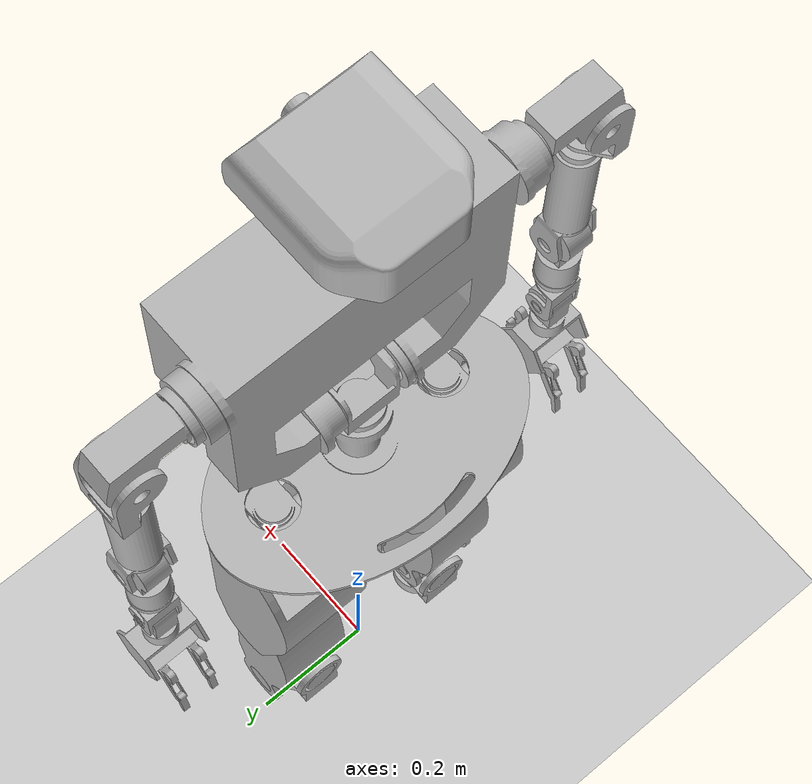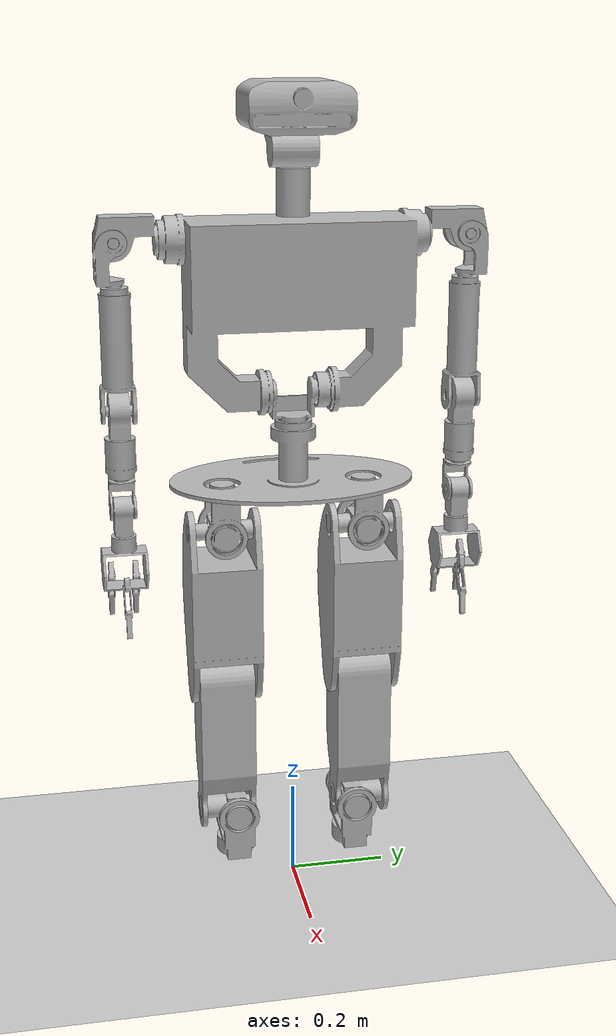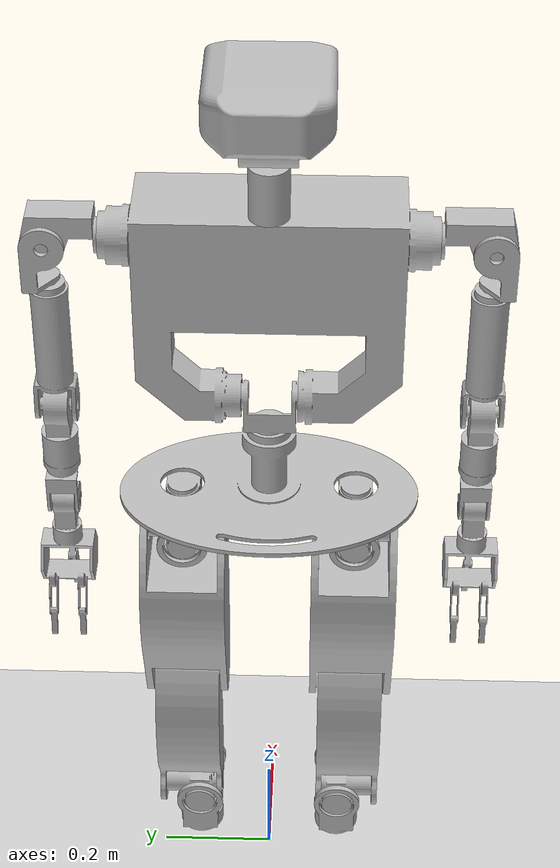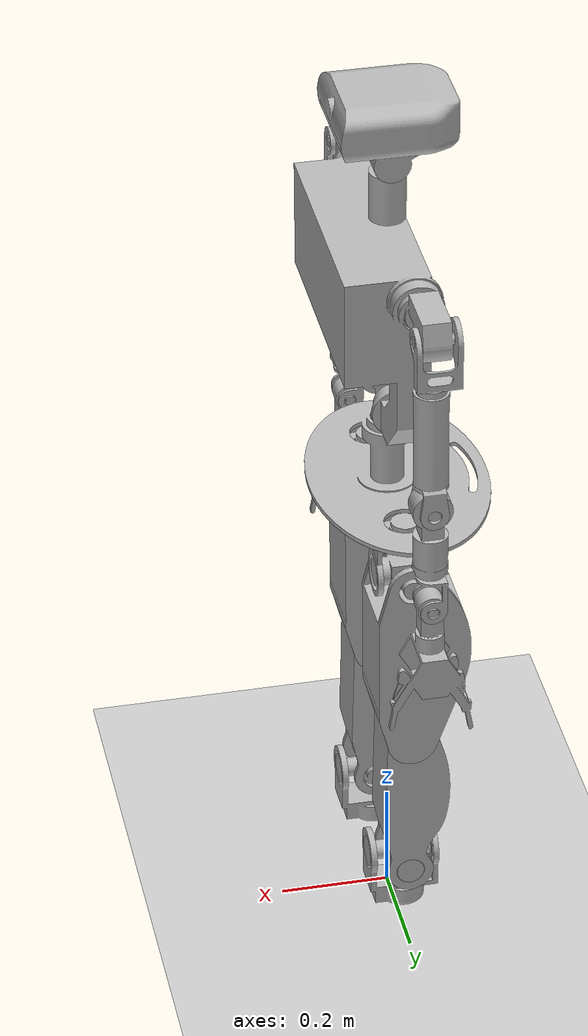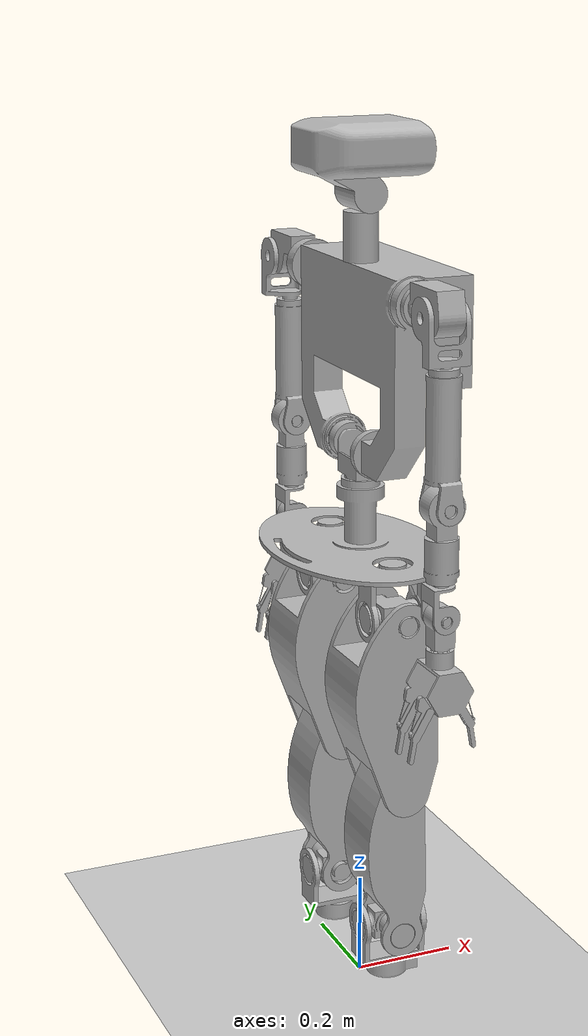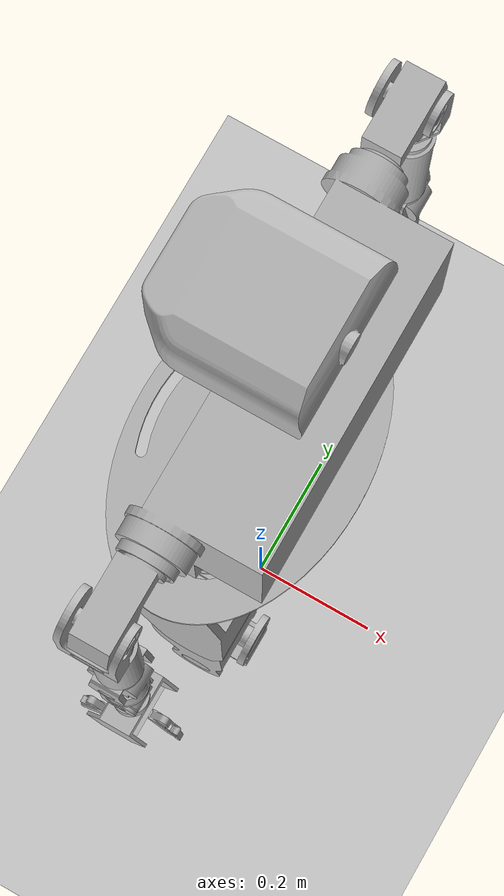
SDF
<?xml version="1.0"?>
<sdf version="1.6">
  <world name="default">

    <include>
      <uri>model://sun</uri>
    </include>

    <include>
      <uri>model://ground_plane</uri>
    </include>

    <include>
      <pose>0 0 0.05 0 -0 0</pose>
      <uri>model://teo/fixed</uri>
    </include>

  </world>
</sdf>

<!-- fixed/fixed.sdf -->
<sdf version='1.6'>
  <model name='teo_fixed'>

    <include>
      <uri>model://teo</uri>
    </include>

    <joint name="fixed_to_ground" type="fixed">
      <parent>world</parent>
      <child>teo::RootWaist_links</child>
    </joint>

  </model>
</sdf>

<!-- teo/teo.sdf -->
<sdf version='1.6'>
  <model name='teo'>

    <link name='RootWaist_links'>
      <pose>0 0 0 0 -0 0</pose>
      <inertial>
        <pose>-0.010985 -0.000323 0.033148 0 -0 0</pose>
        <mass>2.5</mass>
        <inertia>
          <ixx>0.038530767</ixx>
          <ixy>-0.000000135</ixy>
          <ixz>0.000238121</ixz>
          <iyy>0.017354343</iyy>
          <iyz>-4.8e-10</iyz>
          <izz>0.053231634</izz>
        </inertia>
      </inertial>
      <visual name='RootWaist_links_visual'>
        <geometry>
          <mesh>
            <uri>model://teo/meshes/visual/RootWaist_links.dae</uri>
          </mesh>
        </geometry>
      </visual>
    </link>

    <include>
      <pose>0 0 0.1932 0 -0 0</pose>
      <uri>model://teo/trunk</uri>
    </include>

    <include>
      <pose>0 0 0.6282 0 -0 0</pose>
      <uri>model://teo/head</uri>
    </include>

    <include>
      <pose>0 -0.26292 0.4982 0 -0 0</pose>
      <uri>model://teo/rightArm</uri>
    </include>

    <include>
      <pose>0 0.26292 0.4982 0 -0 0</pose>
      <uri>model://teo/leftArm</uri>
    </include>

    <include>
      <pose>0 -0.146 0 0 -0 0</pose>
      <uri>model://teo/rightLeg</uri>
    </include>

    <include>
      <pose>0 0.146 0 0 -0 0</pose>
      <uri>model://teo/leftLeg</uri>
    </include>

    <pose>0 0 0.845 0 -0 0</pose>

  </model>
</sdf>

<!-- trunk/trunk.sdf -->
<sdf version='1.6'>
  <model name='teo_trunk'>

    <link name='AxialWaist_link'>
      <pose>0 0 0 0 -0 0</pose>
      <inertial>
        <pose>-0.002235 -0.000979 -0.018814 0 -0 0</pose>
        <mass>1</mass>
        <inertia>
          <ixx>0.001977587</ixx>
          <ixy>0.00000206</ixy>
          <ixz>0.0000297</ixz>
          <iyy>0.000899729</iyy>
          <iyz>-0.00000307</iyz>
          <izz>0.001471749</izz>
        </inertia>
      </inertial>
      <visual name='AxialWaist_visual'>
        <geometry>
          <mesh>
            <uri>model://teo/meshes/visual/AxialWaist.dae</uri>
          </mesh>
        </geometry>
      </visual>
    </link>

    <joint name='AxialWaist' type='revolute'>
      <parent>teo::RootWaist_links</parent>
      <child>teo_trunk::AxialWaist_link</child>
      <axis>
        <xyz>0 0 1</xyz>
        <limit>
          <lower>-1.03</lower>
          <upper>0.81</upper>
        </limit>
      </axis>
    </joint>

    <link name='FrontalWaist_link'>
      <pose>0 0 0 0 -0 0</pose>
      <inertial>
        <pose>0.032985 -0.007876 0.220667 0 -0 0</pose>
        <mass>14.23545</mass>
        <inertia>
          <ixx>0.33566514</ixx>
          <ixy>0.000162127</ixy>
          <ixz>0.011858221</ixz>
          <iyy>0.126531585</iyy>
          <iyz>0.000914091</iyz>
          <izz>0.263359225</izz>
        </inertia>
      </inertial>
      <visual name='FrontalWaist_visual'>
        <geometry>
          <mesh>
            <uri>model://teo/meshes/visual/RootWaist.dae</uri>
          </mesh>
        </geometry>
      </visual>
    </link>

    <joint name='FrontalWaist' type='revolute'>
      <parent>teo_trunk::AxialWaist_link</parent>
      <child>teo_trunk::FrontalWaist_link</child>
      <axis>
        <xyz>0 1 0</xyz>
        <limit>
          <lower>-1.58</lower>
          <upper>0.18</upper>
        </limit>
      </axis>
    </joint>

    <plugin name='controlboard_trunk' filename='libgazebo_yarp_controlboard.so'>
      <yarpConfigurationFile>model://teo/conf/gazebo_teo_trunk.ini</yarpConfigurationFile>
    </plugin>

  </model>
</sdf>

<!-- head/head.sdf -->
<sdf version='1.6'>
  <model name='teo_head'>

    <link name='AxialNeck_link'>
      <pose>0 0 0 0 -0 0</pose>
      <inertial>
        <pose>0.000302 0.000193 -0.0452 0 -0 0</pose>
        <mass>1</mass>
        <inertia>
          <ixx>0.000939063</ixx>
          <ixy>0</ixy>
          <ixz>0</ixz>
          <iyy>0.000939063</iyy>
          <iyz>0</iyz>
          <izz>0.000528125</izz>
        </inertia>
      </inertial>
      <visual name='AxialNeck_visual'>
        <geometry>
          <mesh>
            <uri>model://teo/meshes/visual/AxialNeck.dae</uri>
          </mesh>
        </geometry>
      </visual>
    </link>

    <joint name='AxialNeck' type='revolute'>
      <parent>teo_trunk::FrontalWaist_link</parent>
      <child>teo_head::AxialNeck_link</child>
      <axis>
        <xyz>0 0 1</xyz>
        <limit>
          <lower>-1.22</lower>
          <upper>1.22</upper>
        </limit>
      </axis>
    </joint>

    <link name='FrontalNeck_link'>
      <pose>0 0 0.0325 0 -0 0</pose>
      <inertial>
        <pose>-0.002729 -0.000086 0.067027 0 -0 0</pose>
        <mass>2</mass>
        <inertia>
          <ixx>0.007599322</ixx>
          <ixy>5.83e-09</ixy>
          <ixz>0.0000658</ixz>
          <iyy>0.008325273</iyy>
          <iyz>-7.43e-09</iyz>
          <izz>0.011403464</izz>
        </inertia>
      </inertial>
      <visual name='FrontalNeck_visual'>
        <geometry>
          <mesh>
            <uri>model://teo/meshes/visual/FrontalNeck.dae</uri>
          </mesh>
        </geometry>
      </visual>
    </link>

    <joint name='FrontalNeck' type='revolute'>
      <parent>teo_head::AxialNeck_link</parent>
      <child>teo_head::FrontalNeck_link</child>
      <axis>
        <xyz>0 1 0</xyz>
        <limit>
          <lower>-0.51</lower>
          <upper>0.15</upper>
        </limit>
      </axis>
    </joint>

    <plugin name='controlboard_head' filename='libgazebo_yarp_controlboard.so'>
      <yarpConfigurationFile>model://teo/conf/gazebo_teo_head.ini</yarpConfigurationFile>
    </plugin>

  </model>
</sdf>

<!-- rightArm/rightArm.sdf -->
<sdf version='1.6'>
  <model name='teo_rightArm'>

    <link name='FrontalRightShoulder_link'>
      <pose>0 0 0 0 -0 0</pose>
      <inertial>
        <pose>-0.002267 -0.056164 0.008456 0 -0 0</pose>
        <mass>2</mass>
        <inertia>
          <ixx>0.004226791</ixx>
          <ixy>0.0000844</ixy>
          <ixz>-0.0000117</ixz>
          <iyy>0.002127281</iyy>
          <iyz>-0.000280493</iyz>
          <izz>0.004093161</izz>
        </inertia>
      </inertial>
      <visual name='FrontalRightShoulder_visual'>
        <geometry>
          <mesh>
            <uri>model://teo/meshes/visual/FrontalRightShoulder.dae</uri>
          </mesh>
        </geometry>
      </visual>
    </link>

    <joint name='FrontalRightShoulder' type='revolute'>
      <parent>teo_trunk::FrontalWaist_link</parent>
      <child>teo_rightArm::FrontalRightShoulder_link</child>
      <axis>
        <xyz>0 1 0</xyz>
        <limit>
          <lower>-1.71</lower>
          <upper>1.85</upper>
        </limit>
      </axis>
    </joint>

    <link name='SagittalRightShoulder_link'>
      <pose>0 -0.084 0 0 -0 0</pose>
      <inertial>
        <pose>-0.008472 -0.004826 -0.027321 0 -0 0</pose>
        <mass>1</mass>
        <inertia>
          <ixx>0.001610932</ixx>
          <ixy>-0.000069</ixy>
          <ixz>-0.000214886</ixz>
          <iyy>0.002187776</iyy>
          <iyz>-0.000069</iyz>
          <izz>0.001173533</izz>
        </inertia>
      </inertial>
      <visual name='SagittalRightShoulder_visual'>
        <geometry>
          <mesh>
            <uri>model://teo/meshes/visual/SagittalRightShoulder.dae</uri>
          </mesh>
        </geometry>
      </visual>
    </link>

    <joint name='SagittalRightShoulder' type='revolute'>
      <parent>teo_rightArm::FrontalRightShoulder_link</parent>
      <child>teo_rightArm::SagittalRightShoulder_link</child>
      <axis>
        <xyz>1 0 0</xyz>
        <limit>
          <lower>-1.32</lower>
          <upper>0.39</upper>
        </limit>
      </axis>
    </joint>

    <link name='AxialRightShoulder_link'>
      <pose>0 -0.084 -0.329 0 -0 0</pose>
      <visual name='AxialRightShoulder_visual'>
        <geometry>
          <mesh>
            <uri>model://teo/meshes/visual/AxialRightShoulder.dae</uri>
          </mesh>
        </geometry>
      </visual>
    </link>

    <joint name='AxialRightShoulder' type='revolute'>
      <parent>teo_rightArm::SagittalRightShoulder_link</parent>
      <child>teo_rightArm::AxialRightShoulder_link</child>
      <axis>
        <xyz>0 0 1</xyz>
        <limit>
          <lower>-1.4</lower>
          <upper>0.99</upper>
        </limit>
      </axis>
    </joint>

    <link name='FrontalRightElbow_link'>
      <pose>0 -0.084 -0.329 0 -0 0</pose>
      <inertial>
        <pose>0.000237 -0.00004 -0.04998 0 -0 0</pose>
        <mass>1</mass>
        <inertia>
          <ixx>0.002590029</ixx>
          <ixy>0</ixy>
          <ixz>0</ixz>
          <iyy>0.00262307</iyy>
          <iyz>0</iyz>
          <izz>0.000446024</izz>
        </inertia>
      </inertial>
      <visual name='FrontalRightElbow_visual'>
        <geometry>
          <mesh>
            <uri>model://teo/meshes/visual/FrontalRightElbow.dae</uri>
          </mesh>
        </geometry>
      </visual>
    </link>

    <joint name='FrontalRightElbow' type='revolute'>
      <parent>teo_rightArm::AxialRightShoulder_link</parent>
      <child>teo_rightArm::FrontalRightElbow_link</child>
      <axis>
        <xyz>0 1 0</xyz>
        <limit>
          <lower>-1.74</lower>
          <upper>1.72</upper>
        </limit>
      </axis>
    </joint>

    <link name='AxialRightWrist_link'>
      <pose>0 -0.084 -0.531 0 -0 0</pose>
      <inertial>
        <pose>-0.001151 0.000603 0.02464 0 -0 0</pose>
        <mass>0.63149</mass>
        <inertia>
          <ixx>0.000701463</ixx>
          <ixy>-0.0000105</ixy>
          <ixz>-0.0000109</ixz>
          <iyy>0.000612806</iyy>
          <iyz>0.0000115</iyz>
          <izz>0.000326949</izz>
        </inertia>
      </inertial>
      <visual name='AxialRightWrist_visual'>
        <geometry>
          <mesh>
            <uri>model://teo/meshes/visual/AxialRightWrist.dae</uri>
          </mesh>
        </geometry>
      </visual>
    </link>

    <joint name='AxialRightWrist' type='revolute'>
      <parent>teo_rightArm::FrontalRightElbow_link</parent>
      <child>teo_rightArm::AxialRightWrist_link</child>
      <axis>
        <xyz>0 0 1</xyz>
        <limit>
          <lower>-1.4</lower>
          <upper>1.74</upper>
        </limit>
      </axis>
    </joint>

    <link name='FrontalRightWrist_link'>
      <pose>0 -0.084 -0.531 0 -0 0</pose>
      <inertial>
        <pose>-0.002314 0.00007 -0.108635 0 -0 0</pose>
        <mass>1.17</mass>
        <inertia>
          <ixx>0.005329957</ixx>
          <ixy>0.000000102</ixy>
          <ixz>0.000114751</ixz>
          <iyy>0.005345282</iyy>
          <iyz>-0.00000807</iyz>
          <izz>0.000883179</izz>
        </inertia>
      </inertial>
      <visual name='FrontalRightWrist_visual'>
        <geometry>
          <mesh>
            <uri>model://teo/meshes/visual/FrontalRightWrist.dae</uri>
          </mesh>
        </geometry>
      </visual>
    </link>

    <joint name='FrontalRightWrist' type='revolute'>
      <parent>teo_rightArm::AxialRightWrist_link</parent>
      <child>teo_rightArm::FrontalRightWrist_link</child>
      <axis>
        <xyz>0 1 0</xyz>
        <limit>
          <lower>-2.01</lower>
          <upper>0.78</upper>
        </limit>
      </axis>
    </joint>

    <plugin name='controlboard_rightArm' filename='libgazebo_yarp_controlboard.so'>
      <yarpConfigurationFile>model://teo/conf/gazebo_teo_rightArm.ini</yarpConfigurationFile>
    </plugin>

  </model>
</sdf>

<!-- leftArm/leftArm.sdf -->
<sdf version='1.6'>
  <model name='teo_leftArm'>

    <link name='FrontalLeftShoulder_link'>
      <pose>0 0 0 0 -0 0</pose>
      <inertial>
        <pose>-0.002272 0.056186 0.008165 0 -0 0</pose>
        <mass>2</mass>
        <inertia>
          <ixx>0.004226791</ixx>
          <ixy>-0.0000855</ixy>
          <ixz>-0.0000117</ixz>
          <iyy>0.00212734</iyy>
          <iyz>0.000280493</iyz>
          <izz>0.00409322</izz>
        </inertia>
      </inertial>
      <visual name='FrontalLeftShoulder_visual'>
        <geometry>
          <mesh>
            <uri>model://teo/meshes/visual/FrontalLeftShoulder.dae</uri>
          </mesh>
        </geometry>
      </visual>
    </link>

    <joint name='FrontalLeftShoulder' type='revolute'>
      <parent>teo_trunk::FrontalWaist_link</parent>
      <child>teo_leftArm::FrontalLeftShoulder_link</child>
      <axis>
        <xyz>0 1 0</xyz>
        <limit>
          <lower>-1.69</lower>
          <upper>1.98</upper>
        </limit>
      </axis>
    </joint>

    <link name='SagittalLeftShoulder_link'>
      <pose>0 0.084 0 0 -0 0</pose>
      <inertial>
        <pose>-0.008047 0.004937 -0.027619 0 -0 0</pose>
        <mass>1</mass>
        <inertia>
          <ixx>0.001610921</ixx>
          <ixy>0.000069</ixy>
          <ixz>-0.000214885</ixz>
          <iyy>0.002187768</iyy>
          <iyz>-0.000163004</iyz>
          <izz>0.001173531</izz>
        </inertia>
      </inertial>
      <visual name='SagittalLeftShoulder_visual'>
        <geometry>
          <mesh>
            <uri>model://teo/meshes/visual/SagittalLeftShoulder.dae</uri>
          </mesh>
        </geometry>
      </visual>
    </link>

    <joint name='SagittalLeftShoulder' type='revolute'>
      <parent>teo_leftArm::FrontalLeftShoulder_link</parent>
      <child>teo_leftArm::SagittalLeftShoulder_link</child>
      <axis>
        <xyz>1 0 0</xyz>
        <limit>
          <lower>-0.42</lower>
          <upper>1.34</upper>
        </limit>
      </axis>
    </joint>

    <link name='AxialLeftShoulder_link'>
      <pose>0 0.084 -0.329 0 -0 0</pose>
      <inertial>
        <pose>-0.000172 0.000249 0.100649 0 -0 0</pose>
        <mass>1</mass>
        <inertia>
          <ixx>0.006925108</ixx>
          <ixy>0</ixy>
          <ixz>0</ixz>
          <iyy>0.006741634</iyy>
          <iyz>0.0000397</iyz>
          <izz>0.000611796</izz>
        </inertia>
      </inertial>
      <visual name='AxialLeftShoulder_visual'>
        <geometry>
          <mesh>
            <uri>model://teo/meshes/visual/AxialLeftShoulder.dae</uri>
          </mesh>
        </geometry>
      </visual>
    </link>

    <joint name='AxialLeftShoulder' type='revolute'>
      <parent>teo_leftArm::SagittalLeftShoulder_link</parent>
      <child>teo_leftArm::AxialLeftShoulder_link</child>
      <axis>
        <xyz>0 0 1</xyz>
        <limit>
          <lower>-0.9</lower>
          <upper>1.47</upper>
        </limit>
      </axis>
    </joint>

    <link name='FrontalLeftElbow_link'>
      <pose>0 0.084 -0.329 0 -0 0</pose>
      <inertial>
        <pose>0.000287 -0.000116 -0.053185 0 -0 0</pose>
        <mass>1</mass>
        <inertia>
          <ixx>0.002590029</ixx>
          <ixy>0</ixy>
          <ixz>0</ixz>
          <iyy>0.00262307</iyy>
          <iyz>0</iyz>
          <izz>0.000446024</izz>
        </inertia>
      </inertial>
      <visual name='FrontalLeftElbow_visual'>
        <geometry>
          <mesh>
            <uri>model://teo/meshes/visual/FrontalLeftElbow.dae</uri>
          </mesh>
        </geometry>
      </visual>
    </link>

    <joint name='FrontalLeftElbow' type='revolute'>
      <parent>teo_leftArm::AxialLeftShoulder_link</parent>
      <child>teo_leftArm::FrontalLeftElbow_link</child>
      <axis>
        <xyz>0 1 0</xyz>
        <limit>
          <lower>-1.76</lower>
          <upper>1.69</upper>
        </limit>
      </axis>
    </joint>

    <link name='AxialLeftWrist_link'>
      <pose>0 0.084 -0.531 0 -0 0</pose>
      <inertial>
        <pose>-0.001151 0.000603 0.02464 0 -0 0</pose>
        <mass>0.63149</mass>
        <inertia>
          <ixx>0.000701463</ixx>
          <ixy>-0.0000105</ixy>
          <ixz>-0.0000109</ixz>
          <iyy>0.000612806</iyy>
          <iyz>0.0000115</iyz>
          <izz>0.000326949</izz>
        </inertia>
      </inertial>
      <visual name='AxialLeftWrist_visual'>
        <geometry>
          <mesh>
            <uri>model://teo/meshes/visual/AxialLeftWrist.dae</uri>
          </mesh>
        </geometry>
      </visual>
    </link>

    <joint name='AxialLeftWrist' type='revolute'>
      <parent>teo_leftArm::FrontalLeftElbow_link</parent>
      <child>teo_leftArm::AxialLeftWrist_link</child>
      <axis>
        <xyz>0 0 1</xyz>
        <limit>
          <lower>-1.77</lower>
          <upper>1.33</upper>
        </limit>
      </axis>
    </joint>

    <link name='FrontalLeftWrist_link'>
      <pose>0 0.084 -0.531 0 -0 0</pose>
      <inertial>
        <pose>-0.002314 0.00007 -0.108635 0 -0 0</pose>
        <mass>1.17</mass>
        <inertia>
          <ixx>0.005330647</ixx>
          <ixy>0.000000128</ixy>
          <ixz>0.000100487</ixz>
          <iyy>0.005345282</iyy>
          <iyz>-0.00000807</iyz>
          <izz>0.000882489</izz>
        </inertia>
      </inertial>
      <visual name='FrontalLeftWrist_visual'>
        <geometry>
          <mesh>
            <uri>model://teo/meshes/visual/FrontalLeftWrist.dae</uri>
          </mesh>
        </geometry>
      </visual>
    </link>

    <joint name='FrontalLeftWrist' type='revolute'>
      <parent>teo_leftArm::AxialLeftWrist_link</parent>
      <child>teo_leftArm::FrontalLeftWrist_link</child>
      <axis>
        <xyz>0 1 0</xyz>
        <limit>
          <lower>-1.98</lower>
          <upper>1.07</upper>
        </limit>
      </axis>
    </joint>

    <plugin name='controlboard_leftArm' filename='libgazebo_yarp_controlboard.so'>
      <yarpConfigurationFile>model://teo/conf/gazebo_teo_leftArm.ini</yarpConfigurationFile>
    </plugin>

  </model>
</sdf>

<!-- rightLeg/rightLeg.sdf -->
<sdf version='1.6'>
  <model name='teo_rightLeg'>

    <link name='AxialRightHip_link'>
      <pose>0 0 0 0 -0 0</pose>
      <inertial>
        <pose>0.000089 -0.000389 -0.065985 0 -0 0</pose>
        <mass>0.84945</mass>
        <inertia>
          <ixx>0.001564202</ixx>
          <ixy>0</ixy>
          <ixz>0.0000025</ixz>
          <iyy>0.002645089</iyy>
          <iyz>0</iyz>
          <izz>0.001706349</izz>
        </inertia>
      </inertial>
      <visual name='AxialRightHip_visual'>
        <geometry>
          <mesh>
            <uri>model://teo/meshes/visual/AxialRightHip.dae</uri>
          </mesh>
        </geometry>
      </visual>
    </link>

    <joint name='AxialRightHip' type='revolute'>
      <parent>teo::RootWaist_links</parent>
      <child>teo_rightLeg::AxialRightHip_link</child>
      <axis>
        <xyz>0 0 1</xyz>
        <limit>
          <lower>-0.57</lower>
          <upper>0.49</upper>
        </limit>
      </axis>
    </joint>

    <link name='SagittalRightHip_link'>
      <pose>0 0 -0.092 0 -0 0</pose>
      <inertial>
        <pose>-0.000636 0.001058 0.000349 0 -0 0</pose>
        <mass>1.45459</mass>
        <inertia>
          <ixx>0.001545815</ixx>
          <ixy>-0.00000297</ixy>
          <ixz>-4.07e-09</ixz>
          <iyy>0.00119159</iyy>
          <iyz>9.16e-09</iyz>
          <izz>0.002270482</izz>
        </inertia>
      </inertial>
      <visual name='SagittalRightHip_visual'>
        <geometry>
          <mesh>
            <uri>model://teo/meshes/visual/SagittalRightHip.dae</uri>
          </mesh>
        </geometry>
      </visual>
    </link>

    <joint name='SagittalRightHip' type='revolute'>
      <parent>teo_rightLeg::AxialRightHip_link</parent>
      <child>teo_rightLeg::SagittalRightHip_link</child>
      <axis>
        <xyz>1 0 0</xyz>
        <limit>
          <lower>-0.25</lower>
          <upper>0.22</upper>
        </limit>
      </axis>
    </joint>

    <link name='FrontalRightHip_link'>
      <pose>0 0 -0.092 0 -0 0</pose>
      <inertial>
        <pose>-0.010862 -0.000006 -0.161205 0 -0 0</pose>
        <mass>1.89152</mass>
        <inertia>
          <ixx>0.015077735</ixx>
          <ixy>0</ixy>
          <ixz>-0.000442074</ixz>
          <iyy>0.015112044</iyy>
          <iyz>0</iyz>
          <izz>0.00747346</izz>
        </inertia>
      </inertial>
      <visual name='FrontalRightHip_visual'>
        <geometry>
          <mesh>
            <uri>model://teo/meshes/visual/FrontalRightHip.dae</uri>
          </mesh>
        </geometry>
      </visual>
    </link>

    <joint name='FrontalRightHip' type='revolute'>
      <parent>teo_rightLeg::SagittalRightHip_link</parent>
      <child>teo_rightLeg::FrontalRightHip_link</child>
      <axis>
        <xyz>0 1 0</xyz>
        <limit>
          <lower>-0.55</lower>
          <upper>0.74</upper>
        </limit>
      </axis>
    </joint>

    <link name='FrontalRightKnee_link'>
      <pose>0 0 -0.422 0 -0 0</pose>
      <inertial>
        <pose>-0.006614 -0.000411 -0.146413 0 -0 0</pose>
        <mass>1.94824</mass>
        <inertia>
          <ixx>0.02186171</ixx>
          <ixy>0</ixy>
          <ixz>0.00000316</ixz>
          <iyy>0.021411109</iyy>
          <iyz>0</iyz>
          <izz>0.003843636</izz>
        </inertia>
      </inertial>
      <visual name='FrontalRightKnee_visual'>
        <geometry>
          <mesh>
            <uri>model://teo/meshes/visual/FrontalRightKnee.dae</uri>
          </mesh>
        </geometry>
      </visual>
    </link>

    <joint name='FrontalRightKnee' type='revolute'>
      <parent>teo_rightLeg::FrontalRightHip_link</parent>
      <child>teo_rightLeg::FrontalRightKnee_link</child>
      <axis>
        <xyz>0 1 0</xyz>
        <limit>
          <lower>-1.07</lower>
          <upper>1.44</upper>
        </limit>
      </axis>
    </joint>

    <link name='FrontalRightAnkle_link'>
      <pose>0 0.0175 -0.722 0 -0 0</pose>
      <inertial>
        <pose>0.002577 -0.013536 0.000182 0 -0 0</pose>
        <mass>1.50359</mass>
        <inertia>
          <ixx>0.001395488</ixx>
          <ixy>0.00000685</ixy>
          <ixz>1e-11</ixz>
          <iyy>0.001589358</iyy>
          <iyz>0</iyz>
          <izz>0.002418657</izz>
        </inertia>
      </inertial>
      <visual name='FrontalRightAnkle_visual'>
        <geometry>
          <mesh>
            <uri>model://teo/meshes/visual/FrontalRightAnkle.dae</uri>
          </mesh>
        </geometry>
      </visual>
    </link>

    <joint name='FrontalRightAnkle' type='revolute'>
      <parent>teo_rightLeg::FrontalRightKnee_link</parent>
      <child>teo_rightLeg::FrontalRightAnkle_link</child>
      <axis>
        <xyz>0 1 0</xyz>
        <limit>
          <lower>-0.4</lower>
          <upper>0.44</upper>
        </limit>
      </axis>
    </joint>

    <link name='SagittalRightAnkle_link'>
      <pose>0 0.0175 -0.722 0 -0 0</pose>
      <inertial>
        <pose>0.01003 0.000936 -0.0669 0 -0 0</pose>
        <mass>3.1334</mass>
        <inertia>
          <ixx>0.00774203</ixx>
          <ixy>0.000455866</ixy>
          <ixz>-0.001851657</ixz>
          <iyy>0.014781323</iyy>
          <iyz>-0.000147513</iyz>
          <izz>0.013361748</izz>
        </inertia>
      </inertial>
      <visual name='FrontalRightAnkle_visual'>
        <geometry>
          <mesh>
            <uri>model://teo/meshes/visual/SagittalRightAnkle.dae</uri>
          </mesh>
        </geometry>
      </visual>
    </link>

    <joint name='SagittalRightAnkle' type='revolute'>
      <parent>teo_rightLeg::FrontalRightAnkle_link</parent>
      <child>teo_rightLeg::SagittalRightAnkle_link</child>
      <axis>
        <xyz>1 0 0</xyz>
        <limit>
          <lower>-0.35</lower>
          <upper>0.74</upper>
        </limit>
      </axis>
    </joint>

    <plugin name='controlboard_rightLeg' filename='libgazebo_yarp_controlboard.so'>
      <yarpConfigurationFile>model://teo/conf/gazebo_teo_rightLeg.ini</yarpConfigurationFile>
    </plugin>

  </model>
</sdf>

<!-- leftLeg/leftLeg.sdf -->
<sdf version='1.6'>
  <model name='teo_leftLeg'>

    <link name='AxialLeftHip_link'>
      <pose>0 0 0 0 -0 0</pose>
      <inertial>
        <pose>0.000089 -0.000389 -0.065985 0 -0 0</pose>
        <mass>0.84945</mass>
        <inertia>
          <ixx>0.001564202</ixx>
          <ixy>0.0000025</ixy>
          <ixz>0</ixz>
          <iyy>0.002645089</iyy>
          <iyz>0</iyz>
          <izz>0.001706349</izz>
        </inertia>
      </inertial>
      <visual name='AxialLeftHip_visual'>
        <geometry>
          <mesh>
            <uri>model://teo/meshes/visual/AxialLeftHip.dae</uri>
          </mesh>
        </geometry>
      </visual>
    </link>

    <joint name='AxialLeftHip' type='revolute'>
      <parent>teo::RootWaist_links</parent>
      <child>teo_leftLeg::AxialLeftHip_link</child>
      <axis>
        <xyz>0 0 1</xyz>
        <limit>
          <lower>-0.49</lower>
          <upper>0.57</upper>
        </limit>
      </axis>
    </joint>

    <link name='SagittalLeftHip_link'>
      <pose>0 0 -0.092 0 -0 0</pose>
      <inertial>
        <pose>-0.00011 -0.000988 0.000214 0 -0 0</pose>
        <mass>1.45459</mass>
        <inertia>
          <ixx>0.001545815</ixx>
          <ixy>-0.00000297</ixy>
          <ixz>-4.07e-09</ixz>
          <iyy>0.00119159</iyy>
          <iyz>9.16e-09</iyz>
          <izz>0.002270482</izz>
        </inertia>
      </inertial>
      <visual name='SagittalLeftHip_visual'>
        <geometry>
          <mesh>
            <uri>model://teo/meshes/visual/SagittalLeftHip.dae</uri>
          </mesh>
        </geometry>
      </visual>
    </link>

    <joint name='SagittalLeftHip' type='revolute'>
      <parent>teo_leftLeg::AxialLeftHip_link</parent>
      <child>teo_leftLeg::SagittalLeftHip_link</child>
      <axis>
        <xyz>1 0 0</xyz>
        <limit>
          <lower>-0.22</lower>
          <upper>0.25</upper>
        </limit>
      </axis>
    </joint>

    <link name='FrontalLeftHip_link'>
      <pose>0 0 -0.092 0 -0 0</pose>
      <inertial>
        <pose>-0.010862 -0.000006 -0.161205 0 -0 0</pose>
        <mass>1.89152</mass>
        <inertia>
          <ixx>0.015077735</ixx>
          <ixy>0</ixy>
          <ixz>-0.000442074</ixz>
          <iyy>0.015112044</iyy>
          <iyz>0</iyz>
          <izz>0.00747346</izz>
        </inertia>
      </inertial>
      <visual name='FrontalLeftHip_visual'>
        <geometry>
          <mesh>
            <uri>model://teo/meshes/visual/FrontalLeftHip.dae</uri>
          </mesh>
        </geometry>
      </visual>
    </link>

    <joint name='FrontalLeftHip' type='revolute'>
      <parent>teo_leftLeg::SagittalLeftHip_link</parent>
      <child>teo_leftLeg::FrontalLeftHip_link</child>
      <axis>
        <xyz>0 1 0</xyz>
        <limit>
          <lower>-0.55</lower>
          <upper>0.74</upper>
        </limit>
      </axis>
    </joint>

    <link name='FrontalLeftKnee_link'>
      <pose>0 0 -0.422 0 -0 0</pose>
      <inertial>
        <pose>-0.006614 -0.000411 -0.146413 0 -0 0</pose>
        <mass>1.94824</mass>
        <inertia>
          <ixx>0.02186171</ixx>
          <ixy>0</ixy>
          <ixz>0.00000316</ixz>
          <iyy>0.021411109</iyy>
          <iyz>0</iyz>
          <izz>0.003843636</izz>
        </inertia>
      </inertial>
      <visual name='FrontalLeftKnee_visual'>
        <geometry>
          <mesh>
            <uri>model://teo/meshes/visual/FrontalLeftKnee.dae</uri>
          </mesh>
        </geometry>
      </visual>
    </link>

    <joint name='FrontalLeftKnee' type='revolute'>
      <parent>teo_leftLeg::FrontalLeftHip_link</parent>
      <child>teo_leftLeg::FrontalLeftKnee_link</child>
      <axis>
        <xyz>0 1 0</xyz>
        <limit>
          <lower>-1.07</lower>
          <upper>1.44</upper>
        </limit>
      </axis>
    </joint>

    <link name='FrontalLeftAnkle_link'>
      <pose>0 -0.0175 -0.722 0 -0 0</pose>
      <inertial>
        <pose>0.001999 0.013793 0.000035 0 -0 0</pose>
        <mass>1.50359</mass>
        <inertia>
          <ixx>0.001392287</ixx>
          <ixy>-0.0000121</ixy>
          <ixz>1e-11</ixz>
          <iyy>0.001590045</iyy>
          <iyz>1e-11</iyz>
          <izz>0.00241606</izz>
        </inertia>
      </inertial>
      <visual name='FrontalLeftAnkle_visual'>
        <geometry>
          <mesh>
            <uri>model://teo/meshes/visual/FrontalLeftAnkle.dae</uri>
          </mesh>
        </geometry>
      </visual>
    </link>

    <joint name='FrontalLeftAnkle' type='revolute'>
      <parent>teo_leftLeg::FrontalLeftKnee_link</parent>
      <child>teo_leftLeg::FrontalLeftAnkle_link</child>
      <axis>
        <xyz>0 1 0</xyz>
        <limit>
          <lower>-0.4</lower>
          <upper>0.44</upper>
        </limit>
      </axis>
    </joint>

    <link name='SagittalLeftAnkle_link'>
      <pose>0 -0.0175 -0.722 0 -0 0</pose>
      <inertial>
        <pose>0.010136 -0.000799 -0.0669 0 -0 0</pose>
        <mass>3.1334</mass>
        <inertia>
          <ixx>0.007763728</ixx>
          <ixy>-0.000524258</ixy>
          <ixz>-0.001424772</ixz>
          <iyy>0.014591641</iyy>
          <iyz>0.000173925</iyz>
          <izz>0.013164253</izz>
        </inertia>
      </inertial>
      <visual name='SagittalLeftAnkle_visual'>
        <geometry>
          <mesh>
            <uri>model://teo/meshes/visual/SagittalLeftAnkle.dae</uri>
          </mesh>
        </geometry>
      </visual>
    </link>

    <joint name='SagittalLeftAnkle' type='revolute'>
      <parent>teo_leftLeg::FrontalLeftAnkle_link</parent>
      <child>teo_leftLeg::SagittalLeftAnkle_link</child>
      <axis>
        <xyz>1 0 0</xyz>
        <limit>
          <lower>-0.74</lower>
          <upper>0.35</upper>
        </limit>
      </axis>
    </joint>

    <link name='LeftFoot_link'>
      <pose>0.0525 -0.0175 -0.84 0 -0 0</pose>
      <collision name='LeftFoot_collision'>
        <geometry>
          <box>
            <size>0.245 0.14 0.01</size>
          </box>
        </geometry>
        <max_contacts>4</max_contacts>
        <surface>
          <contact>
            <ode>
              <kp>18000000</kp>
              <kd>100</kd>
              <max_vel>100</max_vel>
              <min_depth>0.0001</min_depth>
            </ode>
          </contact>
          <friction>
            <ode/>
          </friction>
        </surface>
      </collision>
    </link>

    <joint name='LeftFoot' type='fixed'>
      <parent>teo_leftLeg::SagittalLeftAnkle_link</parent>
      <child>teo_leftLeg::LeftFoot_link</child>
    </joint>

    <plugin name='controlboard_leftLeg' filename='libgazebo_yarp_controlboard.so'>
      <yarpConfigurationFile>model://teo/conf/gazebo_teo_leftLeg.ini</yarpConfigurationFile>
    </plugin>

  </model>
</sdf>
